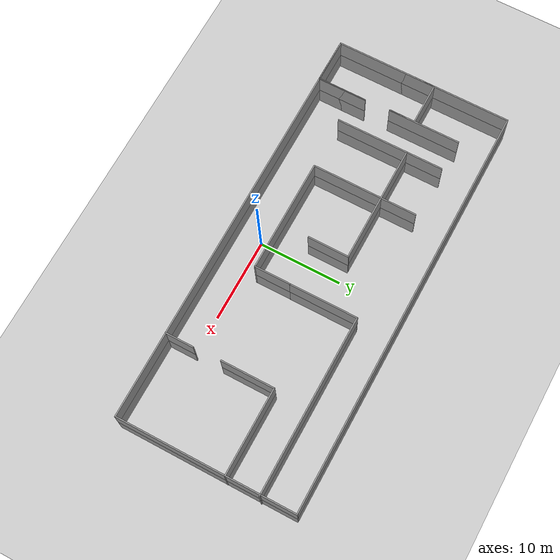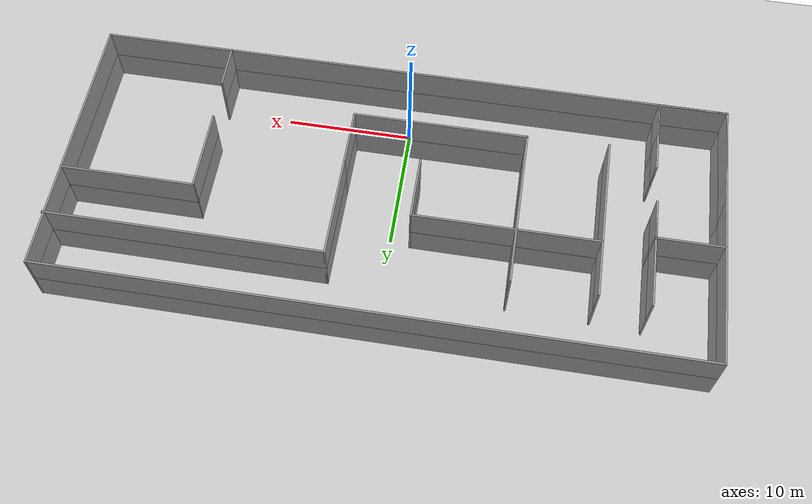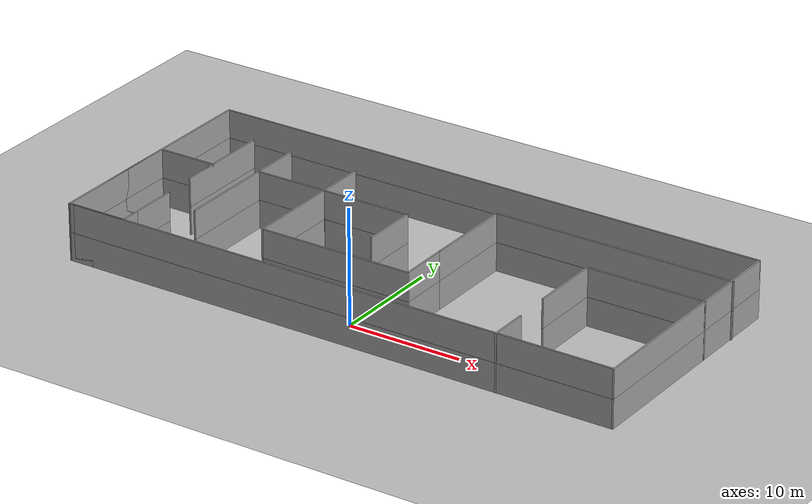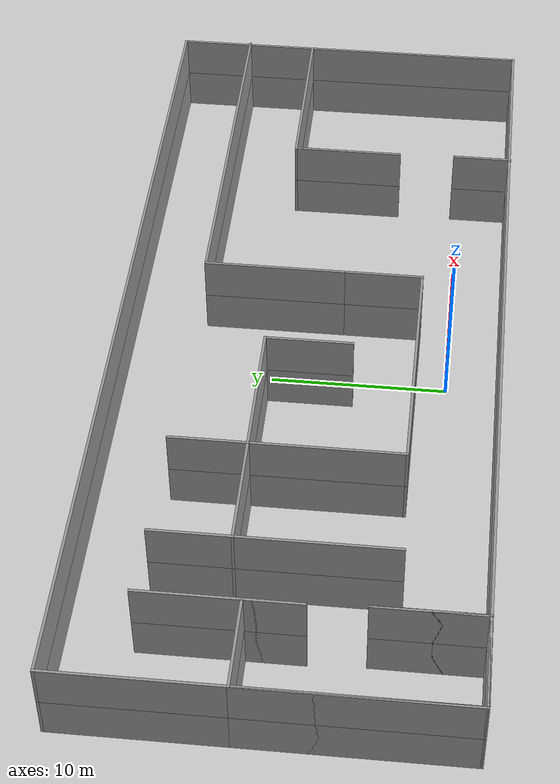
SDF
<sdf version="1.6">
 <world name="default">
  <light name="sun" type="directional">
   <pose>0 0 10 0 -0 0</pose>
   <diffuse>0.8 0.8 0.8 1</diffuse>
   <specular>0.2 0.2 0.2 1</specular>
   <attenuation>
    <range>1000</range>
    <constant>0.9</constant>
    <linear>0.01</linear>
    <quadratic>0.001</quadratic>
   </attenuation>
   <direction>-0.5 0.1 -0.9</direction>
  </light>
  <model name="ground_plane">
   <static>1</static>
   <link name="link">
    <collision name="collision">
     <geometry><plane><normal>0 0 1</normal><size>100 100</size></plane></geometry>
     <surface><friction><ode><mu>100</mu><mu2>50</mu2></ode></friction></surface>
    </collision>
    <visual name="visual">
     <cast_shadows>0</cast_shadows>
     <geometry><plane><normal>0 0 1</normal><size>100 100</size></plane></geometry>
     <material>
      <script><uri>file://media/materials/scripts/gazebo.material</uri><name>Gazebo/Grey</name></script>
     </material>
    </visual>
   </link>
  </model>
  <gravity>0 0 -9.8</gravity>
  <magnetic_field>6e-06 2.3e-05 -4.2e-05</magnetic_field>
  <atmosphere type="adiabatic"/>
  <physics name="default_physics" default="0" type="ode">
   <max_step_size>0.001</max_step_size>
   <real_time_factor>1</real_time_factor>
   <real_time_update_rate>1000</real_time_update_rate>
  </physics>
  <scene><ambient>0.4 0.4 0.4 1</ambient><background>0.7 0.7 0.7 1</background><shadows>1</shadows></scene>
  <audio><device>default</device></audio>
  <spherical_coordinates>
   <surface_model>EARTH_WGS84</surface_model>
   <latitude_deg>0</latitude_deg>
   <longitude_deg>0</longitude_deg>
   <elevation>0</elevation>
   <heading_deg>0</heading_deg>
  </spherical_coordinates>
  <model name="ConvexDemoWorld">
   <pose>0.400642 7.75047 0 0 -0 0</pose>
   <link name="Wall_10">
    <collision name="Wall_10_Collision">
     <geometry><box><size>6 0.15 2.5</size></box></geometry>
     <pose>0 0 1.25 0 -0 0</pose>
    </collision>
    <visual name="Wall_10_Visual">
     <pose>0 0 1.25 0 -0 0</pose>
     <geometry><box><size>6 0.15 2.5</size></box></geometry>
     <material>
      <script><uri>file://media/materials/scripts/gazebo.material</uri><name>Gazebo/Grey</name></script>
      <ambient>1 1 1 1</ambient>
     </material>
     <meta><layer>0</layer></meta>
    </visual>
    <pose>-19.8431 -7.71513 0 0 -0 1.5708</pose>
   </link>
   <link name="Wall_11">
    <collision name="Wall_11_Collision">
     <geometry><box><size>6 0.15 2.5</size></box></geometry>
     <pose>0 0 1.25 0 -0 0</pose>
    </collision>
    <visual name="Wall_11_Visual">
     <pose>0 0 1.25 0 -0 0</pose>
     <geometry><box><size>6 0.15 2.5</size></box></geometry>
     <material>
      <script><uri>file://media/materials/scripts/gazebo.material</uri><name>Gazebo/Grey</name></script>
      <ambient>1 1 1 1</ambient>
     </material>
     <meta><layer>0</layer></meta>
    </visual>
    <pose>-19.8431 -7.71513 0 0 -0 -1.5708</pose>
   </link>
   <link name="Wall_12">
    <collision name="Wall_12_Collision">
     <geometry><box><size>5.41993 0.15 2.5</size></box></geometry>
     <pose>0 0 1.25 0 -0 0</pose>
    </collision>
    <visual name="Wall_12_Visual">
     <pose>0 0 1.25 0 -0 0</pose>
     <geometry><box><size>5.41993 0.15 2.5</size></box></geometry>
     <material>
      <script><uri>file://media/materials/scripts/gazebo.material</uri><name>Gazebo/Grey</name></script>
      <ambient>1 1 1 1</ambient>
     </material>
     <meta><layer>0</layer></meta>
    </visual>
    <pose>-22.478 -10.6517 0 0 -0 -3.13719</pose>
   </link>
   <link name="Wall_13">
    <collision name="Wall_13_Collision">
     <geometry><box><size>12.25 0.15 2.5</size></box></geometry>
     <pose>0 0 1.25 0 -0 0</pose>
    </collision>
    <visual name="Wall_13_Visual">
     <pose>0 0 1.25 0 -0 0</pose>
     <geometry><box><size>12.25 0.15 2.5</size></box></geometry>
     <material>
      <script><uri>file://media/materials/scripts/gazebo.material</uri><name>Gazebo/Grey</name></script>
      <ambient>1 1 1 1</ambient>
     </material>
     <meta><layer>0</layer></meta>
    </visual>
    <pose>-25.1129 -4.61335 0 0 -0 1.5708</pose>
   </link>
   <link name="Wall_14">
    <collision name="Wall_14_Collision">
     <geometry><box><size>5.25 0.15 2.5</size></box></geometry>
     <pose>0 0 1.25 0 -0 0</pose>
    </collision>
    <visual name="Wall_14_Visual">
     <pose>0 0 1.25 0 -0 0</pose>
     <geometry><box><size>5.25 0.15 2.5</size></box></geometry>
     <material>
      <script><uri>file://media/materials/scripts/gazebo.material</uri><name>Gazebo/Grey</name></script>
      <ambient>1 1 1 1</ambient>
     </material>
     <meta><layer>0</layer></meta>
    </visual>
    <pose>-22.5629 1.43665 0 0 -0 0</pose>
   </link>
   <link name="Wall_15">
    <collision name="Wall_15_Collision">
     <geometry><box><size>3.25 0.15 2.5</size></box></geometry>
     <pose>0 0 1.25 0 -0 0</pose>
    </collision>
    <visual name="Wall_15_Visual">
     <pose>0 0 1.25 0 -0 0</pose>
     <geometry><box><size>3.25 0.15 2.5</size></box></geometry>
     <material>
      <script><uri>file://media/materials/scripts/gazebo.material</uri><name>Gazebo/Grey</name></script>
      <ambient>1 1 1 1</ambient>
     </material>
     <meta><layer>0</layer></meta>
    </visual>
    <pose>-20.0129 -0.11335 0 0 -0 -1.5708</pose>
   </link>
   <link name="Wall_16">
    <collision name="Wall_16_Collision">
     <geometry><box><size>8.75 0.15 2.5</size></box></geometry>
     <pose>0 0 1.25 0 -0 0</pose>
    </collision>
    <visual name="Wall_16_Visual">
     <pose>0 0 1.25 0 -0 0</pose>
     <geometry><box><size>8.75 0.15 2.5</size></box></geometry>
     <material>
      <script><uri>file://media/materials/scripts/gazebo.material</uri><name>Gazebo/Grey</name></script>
      <ambient>1 1 1 1</ambient>
     </material>
     <meta><layer>0</layer></meta>
    </visual>
    <pose>-20.0129 2.63665 0 0 -0 1.5708</pose>
   </link>
   <link name="Wall_26">
    <collision name="Wall_26_Collision">
     <geometry><box><size>8.25 0.15 2.5</size></box></geometry>
     <pose>0 0 1.25 0 -0 0</pose>
    </collision>
    <visual name="Wall_26_Visual">
     <pose>0 0 1.25 0 -0 0</pose>
     <geometry><box><size>8.25 0.15 2.5</size></box></geometry>
     <material>
      <script><uri>file://media/materials/scripts/gazebo.material</uri><name>Gazebo/Grey</name></script>
      <ambient>1 1 1 1</ambient>
     </material>
     <meta><layer>0</layer></meta>
    </visual>
    <pose>3.76327 2.42269 0 0 -0 1.5708</pose>
   </link>
   <link name="Wall_27">
    <collision name="Wall_27_Collision">
     <geometry><box><size>21.5 0.15 2.5</size></box></geometry>
     <pose>0 0 1.25 0 -0 0</pose>
    </collision>
    <visual name="Wall_27_Visual">
     <pose>0 0 1.25 0 -0 0</pose>
     <geometry><box><size>21.5 0.15 2.5</size></box></geometry>
     <material>
      <script><uri>file://media/materials/scripts/gazebo.material</uri><name>Gazebo/Grey</name></script>
      <ambient>1 1 1 1</ambient>
     </material>
     <meta><layer>0</layer></meta>
    </visual>
    <pose>14.4383 6.47269 0 0 -0 0</pose>
   </link>
   <link name="Wall_29">
    <collision name="Wall_29_Collision">
     <geometry><box><size>10.5 0.15 2.5</size></box></geometry>
     <pose>0 0 1.25 0 -0 0</pose>
    </collision>
    <visual name="Wall_29_Visual">
     <pose>0 0 1.25 0 -0 0</pose>
     <geometry><box><size>10.5 0.15 2.5</size></box></geometry>
     <material>
      <script><uri>file://media/materials/scripts/gazebo.material</uri><name>Gazebo/Grey</name></script>
      <ambient>1 1 1 1</ambient>
     </material>
     <meta><layer>0</layer></meta>
    </visual>
    <pose>19.831 2.38657 0 0 -0 3.14159</pose>
   </link>
   <link name="Wall_3">
    <collision name="Wall_3_Collision">
     <geometry><box><size>49.75 0.15 2.5</size></box></geometry>
     <pose>0 0 1.25 0 -0 0</pose>
    </collision>
    <visual name="Wall_3_Visual">
     <pose>0 0 1.25 0 -0 0</pose>
     <geometry><box><size>49.75 0.15 2.5</size></box></geometry>
     <material>
      <script><uri>file://media/materials/scripts/gazebo.material</uri><name>Gazebo/Grey</name></script>
      <ambient>1 1 1 1</ambient>
     </material>
     <meta><layer>0</layer></meta>
    </visual>
    <pose>0.187057 -10.6633 0 0 -0 0</pose>
   </link>
   <link name="Wall_30">
    <collision name="Wall_30_Collision">
     <geometry><box><size>6.5 0.15 2.5</size></box></geometry>
     <pose>0 0 1.25 0 -0 0</pose>
    </collision>
    <visual name="Wall_30_Visual">
     <pose>0 0 1.25 0 -0 0</pose>
     <geometry><box><size>6.5 0.15 2.5</size></box></geometry>
     <material>
      <script><uri>file://media/materials/scripts/gazebo.material</uri><name>Gazebo/Grey</name></script>
      <ambient>1 1 1 1</ambient>
     </material>
     <meta><layer>0</layer></meta>
    </visual>
    <pose>14.656 -0.788431 0 0 -0 -1.5708</pose>
   </link>
   <link name="Wall_32">
    <collision name="Wall_32_Collision">
     <geometry><box><size>3.5 0.15 2.5</size></box></geometry>
     <pose>0 0 1.25 0 -0 0</pose>
    </collision>
    <visual name="Wall_32_Visual">
     <pose>0 0 1.25 0 -0 0</pose>
     <geometry><box><size>3.5 0.15 2.5</size></box></geometry>
     <material>
      <script><uri>file://media/materials/scripts/gazebo.material</uri><name>Gazebo/Grey</name></script>
      <ambient>1 1 1 1</ambient>
     </material>
     <meta><layer>0</layer></meta>
    </visual>
    <pose>14.7707 -9.01165 0 0 -0 1.5708</pose>
   </link>
   <link name="Wall_35">
    <collision name="Wall_35_Collision">
     <geometry><box><size>4.5 0.15 2.5</size></box></geometry>
     <pose>0 0 1.25 0 -0 0</pose>
    </collision>
    <visual name="Wall_35_Visual">
     <pose>0 0 1.25 0 -0 0</pose>
     <geometry><box><size>4.5 0.15 2.5</size></box></geometry>
     <material>
      <script><uri>file://media/materials/scripts/gazebo.material</uri><name>Gazebo/Grey</name></script>
      <ambient>1 1 1 1</ambient>
     </material>
     <meta><layer>0</layer></meta>
    </visual>
    <pose>3.76327 -3.80231 0 0 -0 -1.5708</pose>
   </link>
   <link name="Wall_36">
    <collision name="Wall_36_Collision">
     <geometry><box><size>13.75 0.15 2.5</size></box></geometry>
     <pose>0 0 1.25 0 -0 0</pose>
    </collision>
    <visual name="Wall_36_Visual">
     <pose>0 0 1.25 0 -0 0</pose>
     <geometry><box><size>13.75 0.15 2.5</size></box></geometry>
     <material>
      <script><uri>file://media/materials/scripts/gazebo.material</uri><name>Gazebo/Grey</name></script>
      <ambient>1 1 1 1</ambient>
     </material>
     <meta><layer>0</layer></meta>
    </visual>
    <pose>-3.03673 -5.97731 0 0 -0 3.14159</pose>
   </link>
   <link name="Wall_37">
    <collision name="Wall_37_Collision">
     <geometry><box><size>12.75 0.15 2.5</size></box></geometry>
     <pose>0 0 1.25 0 -0 0</pose>
    </collision>
    <visual name="Wall_37_Visual">
     <pose>0 0 1.25 0 -0 0</pose>
     <geometry><box><size>12.75 0.15 2.5</size></box></geometry>
     <material>
      <script><uri>file://media/materials/scripts/gazebo.material</uri><name>Gazebo/Grey</name></script>
      <ambient>1 1 1 1</ambient>
     </material>
     <meta><layer>0</layer></meta>
    </visual>
    <pose>-9.83673 0.322693 0 0 -0 1.5708</pose>
   </link>
   <link name="Wall_4">
    <collision name="Wall_4_Collision">
     <geometry><box><size>21.5 0.15 2.5</size></box></geometry>
     <pose>0 0 1.25 0 -0 0</pose>
    </collision>
    <visual name="Wall_4_Visual">
     <pose>0 0 1.25 0 -0 0</pose>
     <geometry><box><size>21.5 0.15 2.5</size></box></geometry>
     <material>
      <script><uri>file://media/materials/scripts/gazebo.material</uri><name>Gazebo/Grey</name></script>
      <ambient>1 1 1 1</ambient>
     </material>
     <meta><layer>0</layer></meta>
    </visual>
    <pose>24.9871 0.01165 0 0 -0 1.5708</pose>
   </link>
   <link name="Wall_40">
    <collision name="Wall_40_Collision">
     <geometry><box><size>8 0.15 2.5</size></box></geometry>
     <pose>0 0 1.25 0 -0 0</pose>
    </collision>
    <visual name="Wall_40_Visual">
     <pose>0 0 1.25 0 -0 0</pose>
     <geometry><box><size>8 0.15 2.5</size></box></geometry>
     <material>
      <script><uri>file://media/materials/scripts/gazebo.material</uri><name>Gazebo/Grey</name></script>
      <ambient>1 1 1 1</ambient>
     </material>
     <meta><layer>0</layer></meta>
    </visual>
    <pose>-5.89868 2.38704 0 0 -0 0</pose>
   </link>
   <link name="Wall_41">
    <collision name="Wall_41_Collision">
     <geometry><box><size>5 0.15 2.5</size></box></geometry>
     <pose>0 0 1.25 0 -0 0</pose>
    </collision>
    <visual name="Wall_41_Visual">
     <pose>0 0 1.25 0 -0 0</pose>
     <geometry><box><size>5 0.15 2.5</size></box></geometry>
     <material>
      <script><uri>file://media/materials/scripts/gazebo.material</uri><name>Gazebo/Grey</name></script>
      <ambient>1 1 1 1</ambient>
     </material>
     <meta><layer>0</layer></meta>
    </visual>
    <pose>-1.97368 -0.037959 0 0 -0 -1.5708</pose>
   </link>
   <link name="Wall_5">
    <collision name="Wall_5_Collision">
     <geometry><box><size>50.25 0.15 2.5</size></box></geometry>
     <pose>0 0 1.25 0 -0 0</pose>
    </collision>
    <visual name="Wall_5_Visual">
     <pose>0 0 1.25 0 -0 0</pose>
     <geometry><box><size>50.25 0.15 2.5</size></box></geometry>
     <material>
      <script><uri>file://media/materials/scripts/gazebo.material</uri><name>Gazebo/Grey</name></script>
      <ambient>1 1 1 1</ambient>
     </material>
     <meta><layer>0</layer></meta>
    </visual>
    <pose>-0.062943 10.6867 0 0 -0 3.14159</pose>
   </link>
   <link name="Wall_50">
    <collision name="Wall_50_Collision">
     <geometry><box><size>6.5 0.15 2.5</size></box></geometry>
     <pose>0 0 1.25 0 -0 0</pose>
    </collision>
    <visual name="Wall_50_Visual">
     <pose>0 0 1.25 0 -0 0</pose>
     <geometry><box><size>6.5 0.15 2.5</size></box></geometry>
     <material>
      <script><uri>file://media/materials/scripts/gazebo.material</uri><name>Gazebo/Grey</name></script>
      <ambient>1 1 1 1</ambient>
     </material>
     <meta><layer>0</layer></meta>
    </visual>
    <pose>-12.9987 2.38704 0 0 -0 3.14159</pose>
   </link>
   <link name="Wall_51">
    <collision name="Wall_51_Collision">
     <geometry><box><size>8.75 0.15 2.5</size></box></geometry>
     <pose>0 0 1.25 0 -0 0</pose>
    </collision>
    <visual name="Wall_51_Visual">
     <pose>0 0 1.25 0 -0 0</pose>
     <geometry><box><size>8.75 0.15 2.5</size></box></geometry>
     <material>
      <script><uri>file://media/materials/scripts/gazebo.material</uri><name>Gazebo/Grey</name></script>
      <ambient>1 1 1 1</ambient>
     </material>
     <meta><layer>0</layer></meta>
    </visual>
    <pose>-16.1737 -1.91296 0 0 -0 -1.5708</pose>
   </link>
   <link name="Wall_53">
    <collision name="Wall_53_Collision">
     <geometry><box><size>4.5 0.15 2.5</size></box></geometry>
     <pose>0 0 1.25 0 -0 0</pose>
    </collision>
    <visual name="Wall_53_Visual">
     <pose>0 0 1.25 0 -0 0</pose>
     <geometry><box><size>4.5 0.15 2.5</size></box></geometry>
     <material>
      <script><uri>file://media/materials/scripts/gazebo.material</uri><name>Gazebo/Grey</name></script>
      <ambient>1 1 1 1</ambient>
     </material>
     <meta><layer>0</layer></meta>
    </visual>
    <pose>-16.1737 4.56204 0 0 -0 1.5708</pose>
   </link>
   <link name="Wall_6">
    <collision name="Wall_6_Collision">
     <geometry><box><size>21.5 0.15 2.5</size></box></geometry>
     <pose>0 0 1.25 0 -0 0</pose>
    </collision>
    <visual name="Wall_6_Visual">
     <pose>0 0 1.25 0 -0 0</pose>
     <geometry><box><size>21.5 0.15 2.5</size></box></geometry>
     <material>
      <script><uri>file://media/materials/scripts/gazebo.material</uri><name>Gazebo/Grey</name></script>
      <ambient>1 1 1 1</ambient>
     </material>
     <meta><layer>0</layer></meta>
    </visual>
    <pose>-25.1129 0.01165 0 0 -0 -1.5708</pose>
   </link>
   <link name="Wall_7">
    <collision name="Wall_7_Collision">
     <geometry><box><size>2.25 0.15 2.5</size></box></geometry>
     <pose>0 0 1.25 0 -0 0</pose>
    </collision>
    <visual name="Wall_7_Visual">
     <pose>0 0 1.25 0 -0 0</pose>
     <geometry><box><size>2.25 0.15 2.5</size></box></geometry>
     <material>
      <script><uri>file://media/materials/scripts/gazebo.material</uri><name>Gazebo/Grey</name></script>
      <ambient>1 1 1 1</ambient>
     </material>
     <meta><layer>0</layer></meta>
    </visual>
    <pose>-24.0629 -10.6633 0 0 -0 0</pose>
   </link>
   <static>1</static>
  </model>
  <model name="ConvexDemoWorld_clone">
   <pose>0.400642 7.75047 2.5 0 -0 0</pose>
   <link name="Wall_10">
    <collision name="Wall_10_Collision">
     <geometry><box><size>6 0.15 2.5</size></box></geometry>
     <pose>0 0 1.25 0 -0 0</pose>
    </collision>
    <visual name="Wall_10_Visual">
     <pose>0 0 1.25 0 -0 0</pose>
     <geometry><box><size>6 0.15 2.5</size></box></geometry>
     <material>
      <script><uri>file://media/materials/scripts/gazebo.material</uri><name>Gazebo/Grey</name></script>
      <ambient>1 1 1 1</ambient>
     </material>
     <meta><layer>0</layer></meta>
    </visual>
    <pose>-19.8431 -7.71513 0 0 -0 1.5708</pose>
   </link>
   <link name="Wall_11">
    <collision name="Wall_11_Collision">
     <geometry><box><size>6 0.15 2.5</size></box></geometry>
     <pose>0 0 1.25 0 -0 0</pose>
    </collision>
    <visual name="Wall_11_Visual">
     <pose>0 0 1.25 0 -0 0</pose>
     <geometry><box><size>6 0.15 2.5</size></box></geometry>
     <material>
      <script><uri>file://media/materials/scripts/gazebo.material</uri><name>Gazebo/Grey</name></script>
      <ambient>1 1 1 1</ambient>
     </material>
     <meta><layer>0</layer></meta>
    </visual>
    <pose>-19.8431 -7.71513 0 0 -0 -1.5708</pose>
   </link>
   <link name="Wall_12">
    <collision name="Wall_12_Collision">
     <geometry><box><size>5.41993 0.15 2.5</size></box></geometry>
     <pose>0 0 1.25 0 -0 0</pose>
    </collision>
    <visual name="Wall_12_Visual">
     <pose>0 0 1.25 0 -0 0</pose>
     <geometry><box><size>5.41993 0.15 2.5</size></box></geometry>
     <material>
      <script><uri>file://media/materials/scripts/gazebo.material</uri><name>Gazebo/Grey</name></script>
      <ambient>1 1 1 1</ambient>
     </material>
     <meta><layer>0</layer></meta>
    </visual>
    <pose>-22.478 -10.6517 0 0 -0 -3.13719</pose>
   </link>
   <link name="Wall_13">
    <collision name="Wall_13_Collision">
     <geometry><box><size>12.25 0.15 2.5</size></box></geometry>
     <pose>0 0 1.25 0 -0 0</pose>
    </collision>
    <visual name="Wall_13_Visual">
     <pose>0 0 1.25 0 -0 0</pose>
     <geometry><box><size>12.25 0.15 2.5</size></box></geometry>
     <material>
      <script><uri>file://media/materials/scripts/gazebo.material</uri><name>Gazebo/Grey</name></script>
      <ambient>1 1 1 1</ambient>
     </material>
     <meta><layer>0</layer></meta>
    </visual>
    <pose>-25.1129 -4.61335 0 0 -0 1.5708</pose>
   </link>
   <link name="Wall_14">
    <collision name="Wall_14_Collision">
     <geometry><box><size>5.25 0.15 2.5</size></box></geometry>
     <pose>0 0 1.25 0 -0 0</pose>
    </collision>
    <visual name="Wall_14_Visual">
     <pose>0 0 1.25 0 -0 0</pose>
     <geometry><box><size>5.25 0.15 2.5</size></box></geometry>
     <material>
      <script><uri>file://media/materials/scripts/gazebo.material</uri><name>Gazebo/Grey</name></script>
      <ambient>1 1 1 1</ambient>
     </material>
     <meta><layer>0</layer></meta>
    </visual>
    <pose>-22.5629 1.43665 0 0 -0 0</pose>
   </link>
   <link name="Wall_15">
    <collision name="Wall_15_Collision">
     <geometry><box><size>3.25 0.15 2.5</size></box></geometry>
     <pose>0 0 1.25 0 -0 0</pose>
    </collision>
    <visual name="Wall_15_Visual">
     <pose>0 0 1.25 0 -0 0</pose>
     <geometry><box><size>3.25 0.15 2.5</size></box></geometry>
     <material>
      <script><uri>file://media/materials/scripts/gazebo.material</uri><name>Gazebo/Grey</name></script>
      <ambient>1 1 1 1</ambient>
     </material>
     <meta><layer>0</layer></meta>
    </visual>
    <pose>-20.0129 -0.11335 0 0 -0 -1.5708</pose>
   </link>
   <link name="Wall_16">
    <collision name="Wall_16_Collision">
     <geometry><box><size>8.75 0.15 2.5</size></box></geometry>
     <pose>0 0 1.25 0 -0 0</pose>
    </collision>
    <visual name="Wall_16_Visual">
     <pose>0 0 1.25 0 -0 0</pose>
     <geometry><box><size>8.75 0.15 2.5</size></box></geometry>
     <material>
      <script><uri>file://media/materials/scripts/gazebo.material</uri><name>Gazebo/Grey</name></script>
      <ambient>1 1 1 1</ambient>
     </material>
     <meta><layer>0</layer></meta>
    </visual>
    <pose>-20.0129 2.63665 0 0 -0 1.5708</pose>
   </link>
   <link name="Wall_26">
    <collision name="Wall_26_Collision">
     <geometry><box><size>8.25 0.15 2.5</size></box></geometry>
     <pose>0 0 1.25 0 -0 0</pose>
    </collision>
    <visual name="Wall_26_Visual">
     <pose>0 0 1.25 0 -0 0</pose>
     <geometry><box><size>8.25 0.15 2.5</size></box></geometry>
     <material>
      <script><uri>file://media/materials/scripts/gazebo.material</uri><name>Gazebo/Grey</name></script>
      <ambient>1 1 1 1</ambient>
     </material>
     <meta><layer>0</layer></meta>
    </visual>
    <pose>3.76327 2.42269 0 0 -0 1.5708</pose>
   </link>
   <link name="Wall_27">
    <collision name="Wall_27_Collision">
     <geometry><box><size>21.5 0.15 2.5</size></box></geometry>
     <pose>0 0 1.25 0 -0 0</pose>
    </collision>
    <visual name="Wall_27_Visual">
     <pose>0 0 1.25 0 -0 0</pose>
     <geometry><box><size>21.5 0.15 2.5</size></box></geometry>
     <material>
      <script><uri>file://media/materials/scripts/gazebo.material</uri><name>Gazebo/Grey</name></script>
      <ambient>1 1 1 1</ambient>
     </material>
     <meta><layer>0</layer></meta>
    </visual>
    <pose>14.4383 6.47269 0 0 -0 0</pose>
   </link>
   <link name="Wall_29">
    <collision name="Wall_29_Collision">
     <geometry><box><size>10.5 0.15 2.5</size></box></geometry>
     <pose>0 0 1.25 0 -0 0</pose>
    </collision>
    <visual name="Wall_29_Visual">
     <pose>0 0 1.25 0 -0 0</pose>
     <geometry><box><size>10.5 0.15 2.5</size></box></geometry>
     <material>
      <script><uri>file://media/materials/scripts/gazebo.material</uri><name>Gazebo/Grey</name></script>
      <ambient>1 1 1 1</ambient>
     </material>
     <meta><layer>0</layer></meta>
    </visual>
    <pose>19.831 2.38657 0 0 -0 3.14159</pose>
   </link>
   <link name="Wall_3">
    <collision name="Wall_3_Collision">
     <geometry><box><size>49.75 0.15 2.5</size></box></geometry>
     <pose>0 0 1.25 0 -0 0</pose>
    </collision>
    <visual name="Wall_3_Visual">
     <pose>0 0 1.25 0 -0 0</pose>
     <geometry><box><size>49.75 0.15 2.5</size></box></geometry>
     <material>
      <script><uri>file://media/materials/scripts/gazebo.material</uri><name>Gazebo/Grey</name></script>
      <ambient>1 1 1 1</ambient>
     </material>
     <meta><layer>0</layer></meta>
    </visual>
    <pose>0.187057 -10.6633 0 0 -0 0</pose>
   </link>
   <link name="Wall_30">
    <collision name="Wall_30_Collision">
     <geometry><box><size>6.5 0.15 2.5</size></box></geometry>
     <pose>0 0 1.25 0 -0 0</pose>
    </collision>
    <visual name="Wall_30_Visual">
     <pose>0 0 1.25 0 -0 0</pose>
     <geometry><box><size>6.5 0.15 2.5</size></box></geometry>
     <material>
      <script><uri>file://media/materials/scripts/gazebo.material</uri><name>Gazebo/Grey</name></script>
      <ambient>1 1 1 1</ambient>
     </material>
     <meta><layer>0</layer></meta>
    </visual>
    <pose>14.656 -0.788431 0 0 -0 -1.5708</pose>
   </link>
   <link name="Wall_32">
    <collision name="Wall_32_Collision">
     <geometry><box><size>3.5 0.15 2.5</size></box></geometry>
     <pose>0 0 1.25 0 -0 0</pose>
    </collision>
    <visual name="Wall_32_Visual">
     <pose>0 0 1.25 0 -0 0</pose>
     <geometry><box><size>3.5 0.15 2.5</size></box></geometry>
     <material>
      <script><uri>file://media/materials/scripts/gazebo.material</uri><name>Gazebo/Grey</name></script>
      <ambient>1 1 1 1</ambient>
     </material>
     <meta><layer>0</layer></meta>
    </visual>
    <pose>14.7707 -9.01165 0 0 -0 1.5708</pose>
   </link>
   <link name="Wall_35">
    <collision name="Wall_35_Collision">
     <geometry><box><size>4.5 0.15 2.5</size></box></geometry>
     <pose>0 0 1.25 0 -0 0</pose>
    </collision>
    <visual name="Wall_35_Visual">
     <pose>0 0 1.25 0 -0 0</pose>
     <geometry><box><size>4.5 0.15 2.5</size></box></geometry>
     <material>
      <script><uri>file://media/materials/scripts/gazebo.material</uri><name>Gazebo/Grey</name></script>
      <ambient>1 1 1 1</ambient>
     </material>
     <meta><layer>0</layer></meta>
    </visual>
    <pose>3.76327 -3.80231 0 0 -0 -1.5708</pose>
   </link>
   <link name="Wall_36">
    <collision name="Wall_36_Collision">
     <geometry><box><size>13.75 0.15 2.5</size></box></geometry>
     <pose>0 0 1.25 0 -0 0</pose>
    </collision>
    <visual name="Wall_36_Visual">
     <pose>0 0 1.25 0 -0 0</pose>
     <geometry><box><size>13.75 0.15 2.5</size></box></geometry>
     <material>
      <script><uri>file://media/materials/scripts/gazebo.material</uri><name>Gazebo/Grey</name></script>
      <ambient>1 1 1 1</ambient>
     </material>
     <meta><layer>0</layer></meta>
    </visual>
    <pose>-3.03673 -5.97731 0 0 -0 3.14159</pose>
   </link>
   <link name="Wall_37">
    <collision name="Wall_37_Collision">
     <geometry><box><size>12.75 0.15 2.5</size></box></geometry>
     <pose>0 0 1.25 0 -0 0</pose>
    </collision>
    <visual name="Wall_37_Visual">
     <pose>0 0 1.25 0 -0 0</pose>
     <geometry><box><size>12.75 0.15 2.5</size></box></geometry>
     <material>
      <script><uri>file://media/materials/scripts/gazebo.material</uri><name>Gazebo/Grey</name></script>
      <ambient>1 1 1 1</ambient>
     </material>
     <meta><layer>0</layer></meta>
    </visual>
    <pose>-9.83673 0.322693 0 0 -0 1.5708</pose>
   </link>
   <link name="Wall_4">
    <collision name="Wall_4_Collision">
     <geometry><box><size>21.5 0.15 2.5</size></box></geometry>
     <pose>0 0 1.25 0 -0 0</pose>
    </collision>
    <visual name="Wall_4_Visual">
     <pose>0 0 1.25 0 -0 0</pose>
     <geometry><box><size>21.5 0.15 2.5</size></box></geometry>
     <material>
      <script><uri>file://media/materials/scripts/gazebo.material</uri><name>Gazebo/Grey</name></script>
      <ambient>1 1 1 1</ambient>
     </material>
     <meta><layer>0</layer></meta>
    </visual>
    <pose>24.9871 0.01165 0 0 -0 1.5708</pose>
   </link>
   <link name="Wall_40">
    <collision name="Wall_40_Collision">
     <geometry><box><size>8 0.15 2.5</size></box></geometry>
     <pose>0 0 1.25 0 -0 0</pose>
    </collision>
    <visual name="Wall_40_Visual">
     <pose>0 0 1.25 0 -0 0</pose>
     <geometry><box><size>8 0.15 2.5</size></box></geometry>
     <material>
      <script><uri>file://media/materials/scripts/gazebo.material</uri><name>Gazebo/Grey</name></script>
      <ambient>1 1 1 1</ambient>
     </material>
     <meta><layer>0</layer></meta>
    </visual>
    <pose>-5.89868 2.38704 0 0 -0 0</pose>
   </link>
   <link name="Wall_41">
    <collision name="Wall_41_Collision">
     <geometry><box><size>5 0.15 2.5</size></box></geometry>
     <pose>0 0 1.25 0 -0 0</pose>
    </collision>
    <visual name="Wall_41_Visual">
     <pose>0 0 1.25 0 -0 0</pose>
     <geometry><box><size>5 0.15 2.5</size></box></geometry>
     <material>
      <script><uri>file://media/materials/scripts/gazebo.material</uri><name>Gazebo/Grey</name></script>
      <ambient>1 1 1 1</ambient>
     </material>
     <meta><layer>0</layer></meta>
    </visual>
    <pose>-1.97368 -0.037959 0 0 -0 -1.5708</pose>
   </link>
   <link name="Wall_5">
    <collision name="Wall_5_Collision">
     <geometry><box><size>50.25 0.15 2.5</size></box></geometry>
     <pose>0 0 1.25 0 -0 0</pose>
    </collision>
    <visual name="Wall_5_Visual">
     <pose>0 0 1.25 0 -0 0</pose>
     <geometry><box><size>50.25 0.15 2.5</size></box></geometry>
     <material>
      <script><uri>file://media/materials/scripts/gazebo.material</uri><name>Gazebo/Grey</name></script>
      <ambient>1 1 1 1</ambient>
     </material>
     <meta><layer>0</layer></meta>
    </visual>
    <pose>-0.062943 10.6867 0 0 -0 3.14159</pose>
   </link>
   <link name="Wall_50">
    <collision name="Wall_50_Collision">
     <geometry><box><size>6.5 0.15 2.5</size></box></geometry>
     <pose>0 0 1.25 0 -0 0</pose>
    </collision>
    <visual name="Wall_50_Visual">
     <pose>0 0 1.25 0 -0 0</pose>
     <geometry><box><size>6.5 0.15 2.5</size></box></geometry>
     <material>
      <script><uri>file://media/materials/scripts/gazebo.material</uri><name>Gazebo/Grey</name></script>
      <ambient>1 1 1 1</ambient>
     </material>
     <meta><layer>0</layer></meta>
    </visual>
    <pose>-12.9987 2.38704 0 0 -0 3.14159</pose>
   </link>
   <link name="Wall_51">
    <collision name="Wall_51_Collision">
     <geometry><box><size>8.75 0.15 2.5</size></box></geometry>
     <pose>0 0 1.25 0 -0 0</pose>
    </collision>
    <visual name="Wall_51_Visual">
     <pose>0 0 1.25 0 -0 0</pose>
     <geometry><box><size>8.75 0.15 2.5</size></box></geometry>
     <material>
      <script><uri>file://media/materials/scripts/gazebo.material</uri><name>Gazebo/Grey</name></script>
      <ambient>1 1 1 1</ambient>
     </material>
     <meta><layer>0</layer></meta>
    </visual>
    <pose>-16.1737 -1.91296 0 0 -0 -1.5708</pose>
   </link>
   <link name="Wall_53">
    <collision name="Wall_53_Collision">
     <geometry><box><size>4.5 0.15 2.5</size></box></geometry>
     <pose>0 0 1.25 0 -0 0</pose>
    </collision>
    <visual name="Wall_53_Visual">
     <pose>0 0 1.25 0 -0 0</pose>
     <geometry><box><size>4.5 0.15 2.5</size></box></geometry>
     <material>
      <script><uri>file://media/materials/scripts/gazebo.material</uri><name>Gazebo/Grey</name></script>
      <ambient>1 1 1 1</ambient>
     </material>
     <meta><layer>0</layer></meta>
    </visual>
    <pose>-16.1737 4.56204 0 0 -0 1.5708</pose>
   </link>
   <link name="Wall_6">
    <collision name="Wall_6_Collision">
     <geometry><box><size>21.5 0.15 2.5</size></box></geometry>
     <pose>0 0 1.25 0 -0 0</pose>
    </collision>
    <visual name="Wall_6_Visual">
     <pose>0 0 1.25 0 -0 0</pose>
     <geometry><box><size>21.5 0.15 2.5</size></box></geometry>
     <material>
      <script><uri>file://media/materials/scripts/gazebo.material</uri><name>Gazebo/Grey</name></script>
      <ambient>1 1 1 1</ambient>
     </material>
     <meta><layer>0</layer></meta>
    </visual>
    <pose>-25.1129 0.01165 0 0 -0 -1.5708</pose>
   </link>
   <link name="Wall_7">
    <collision name="Wall_7_Collision">
     <geometry><box><size>2.25 0.15 2.5</size></box></geometry>
     <pose>0 0 1.25 0 -0 0</pose>
    </collision>
    <visual name="Wall_7_Visual">
     <pose>0 0 1.25 0 -0 0</pose>
     <geometry><box><size>2.25 0.15 2.5</size></box></geometry>
     <material>
      <script><uri>file://media/materials/scripts/gazebo.material</uri><name>Gazebo/Grey</name></script>
      <ambient>1 1 1 1</ambient>
     </material>
     <meta><layer>0</layer></meta>
    </visual>
    <pose>-24.0629 -10.6633 0 0 -0 0</pose>
   </link>
   <static>1</static>
  </model>
 </world>
</sdf>
